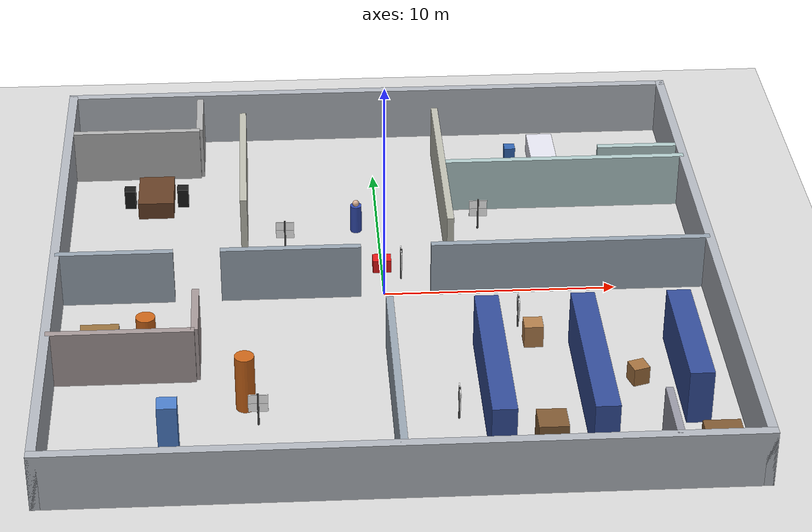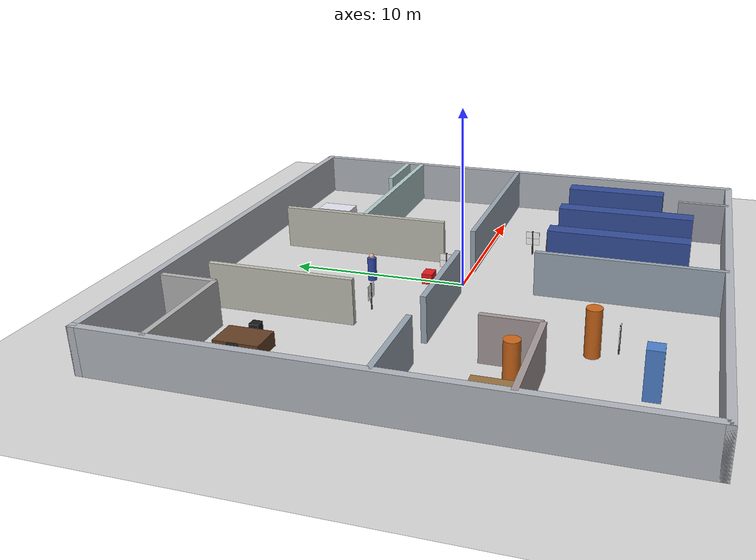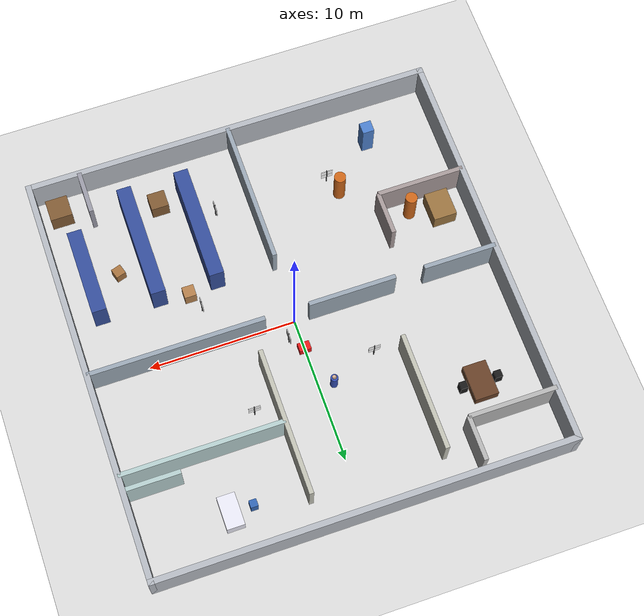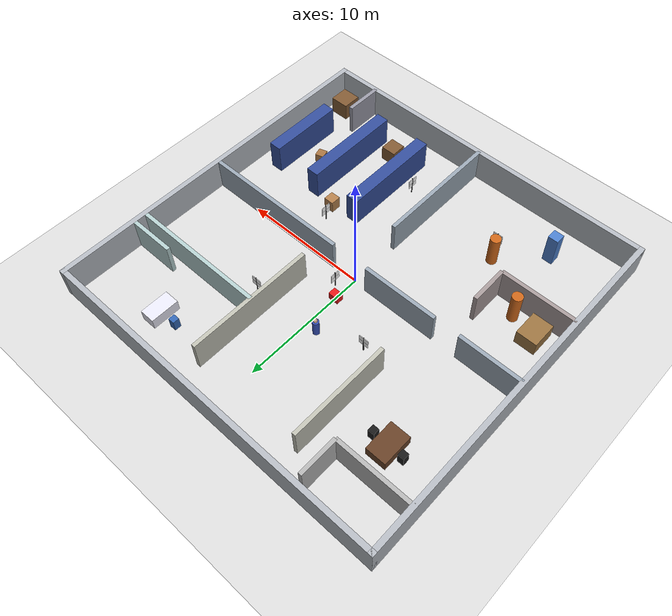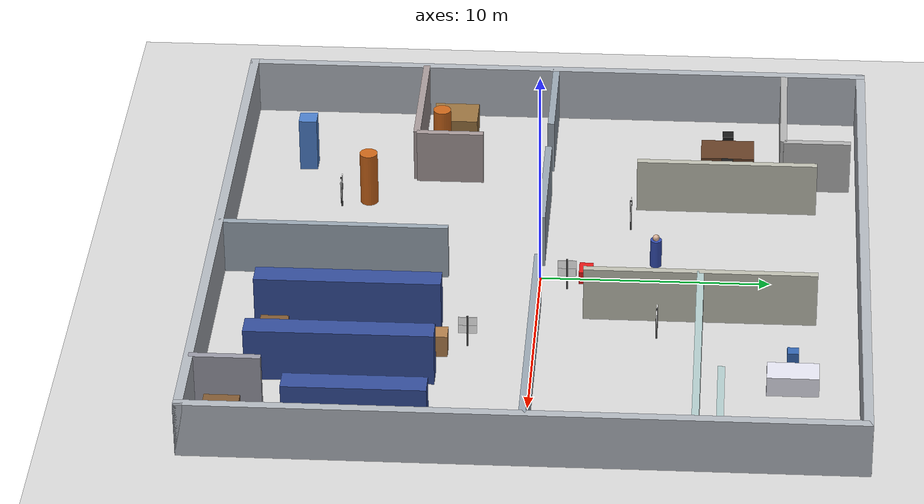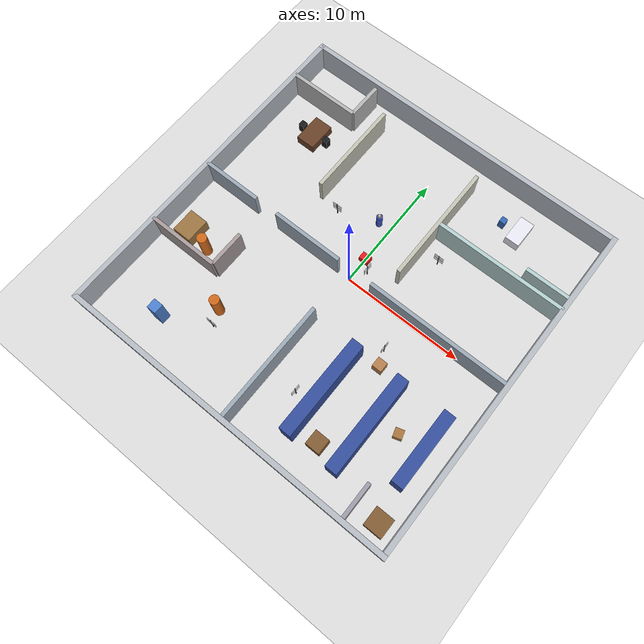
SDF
<?xml version="1.0" ?>
<sdf version="1.8">
  <world name="complex_world">
    <physics name="1ms" type="ignored">
      <max_step_size>0.002</max_step_size>
      <real_time_factor>1.0</real_time_factor>
    </physics>

    <!-- Essential Gazebo Sim Systems -->
    <plugin filename="gz-sim-physics-system" name="gz::sim::systems::Physics"/>
    <plugin filename="gz-sim-user-commands-system" name="gz::sim::systems::UserCommands"/>
    <plugin filename="gz-sim-scene-broadcaster-system" name="gz::sim::systems::SceneBroadcaster"/>
    <plugin filename="gz-sim-sensors-system" name="gz::sim::systems::Sensors">
      <render_engine>ogre2</render_engine>
    </plugin>
    <plugin filename="gz-sim-imu-system" name="gz::sim::systems::Imu"/>

    <!-- Lighting -->
    <light type="directional" name="sun">
      <cast_shadows>true</cast_shadows>
      <pose>0 0 15 0 0 0</pose>
      <diffuse>0.9 0.9 0.9 1</diffuse>
      <specular>0.3 0.3 0.3 1</specular>
      <direction>-0.5 0.3 -0.9</direction>
    </light>

    <!-- Ground Plane (40m x 40m) -->
    <model name="ground_plane">
      <static>true</static>
      <link name="link">
        <collision name="collision">
          <geometry>
            <plane><normal>0 0 1</normal><size>40 40</size></plane>
          </geometry>
        </collision>
        <visual name="visual">
          <geometry>
            <plane><normal>0 0 1</normal><size>40 40</size></plane>
          </geometry>
          <material>
            <ambient>0.85 0.85 0.85 1</ambient>
            <diffuse>0.85 0.85 0.85 1</diffuse>
            <specular>0.2 0.2 0.2 1</specular>
          </material>
        </visual>
      </link>
    </model>

    <!-- ==================== OUTER BOUNDARY WALLS (28m x 28m) ==================== -->
    <model name="boundary_walls">
      <static>true</static>
      <!-- North Wall -->
      <link name="north_wall">
        <pose>0 14 1.25 0 0 0</pose>
        <collision name="col"><geometry><box><size>28.4 0.4 2.5</size></box></geometry></collision>
        <visual name="vis"><geometry><box><size>28.4 0.4 2.5</size></box></geometry><material><diffuse>0.7 0.72 0.75 1</diffuse></material></visual>
      </link>
      <!-- South Wall -->
      <link name="south_wall">
        <pose>0 -14 1.25 0 0 0</pose>
        <collision name="col"><geometry><box><size>28.4 0.4 2.5</size></box></geometry></collision>
        <visual name="vis"><geometry><box><size>28.4 0.4 2.5</size></box></geometry><material><diffuse>0.7 0.72 0.75 1</diffuse></material></visual>
      </link>
      <!-- East Wall -->
      <link name="east_wall">
        <pose>14 0 1.25 0 0 0</pose>
        <collision name="col"><geometry><box><size>0.4 28.4 2.5</size></box></geometry></collision>
        <visual name="vis"><geometry><box><size>0.4 28.4 2.5</size></box></geometry><material><diffuse>0.7 0.72 0.75 1</diffuse></material></visual>
      </link>
      <!-- West Wall -->
      <link name="west_wall">
        <pose>-14 0 1.25 0 0 0</pose>
        <collision name="col"><geometry><box><size>0.4 28.4 2.5</size></box></geometry></collision>
        <visual name="vis"><geometry><box><size>0.4 28.4 2.5</size></box></geometry><material><diffuse>0.7 0.72 0.75 1</diffuse></material></visual>
      </link>
    </model>

    <!-- ==================== INTERIOR DIVIDERS & CORRIDORS ==================== -->
    <model name="interior_dividers">
      <static>true</static>
      <!-- Divider between South and North: West Segment with Bypass Opening at x=-8 -->
      <link name="div_sn_west_a">
        <pose>-11.5 0 1.25 0 0 0</pose>
        <collision name="col"><geometry><box><size>5.0 0.3 2.5</size></box></geometry></collision>
        <visual name="vis"><geometry><box><size>5.0 0.3 2.5</size></box></geometry><material><diffuse>0.6 0.65 0.7 1</diffuse></material></visual>
      </link>
      <!-- West Bypass Opening is between x=-9.0 and x=-7.0 -->
      <link name="div_sn_west_b">
        <pose>-4.0 0 1.25 0 0 0</pose>
        <collision name="col"><geometry><box><size>6.0 0.3 2.5</size></box></geometry></collision>
        <visual name="vis"><geometry><box><size>6.0 0.3 2.5</size></box></geometry><material><diffuse>0.6 0.65 0.7 1</diffuse></material></visual>
      </link>

      <!-- Central Archway is between x=-1.0 and x=+2.0 -->
      <link name="div_sn_east">
        <pose>8.0 0 1.25 0 0 0</pose>
        <collision name="col"><geometry><box><size>12.0 0.3 2.5</size></box></geometry></collision>
        <visual name="vis"><geometry><box><size>12.0 0.3 2.5</size></box></geometry><material><diffuse>0.6 0.65 0.7 1</diffuse></material></visual>
      </link>

      <!-- Divider between Zone A (Open) and Zone B (Warehouse) with corridor gap at y=-10 -->
      <link name="divider_ab_south">
        <pose>0 -9 1.25 0 0 0</pose>
        <collision name="col"><geometry><box><size>0.3 10 2.5</size></box></geometry></collision>
        <visual name="vis"><geometry><box><size>0.3 10 2.5</size></box></geometry><material><diffuse>0.6 0.65 0.7 1</diffuse></material></visual>
      </link>
    </model>

    <!-- ==================== DEAD END 1: ZONE A STORAGE ALCOVE ==================== -->
    <model name="dead_end_1_storage_alcove">
      <static>true</static>
      <!-- Wall enclosing storage alcove -->
      <link name="alcove_wall_north">
        <pose>-11.0 -6.0 1.25 0 0 0</pose>
        <collision name="col"><geometry><box><size>6.0 0.3 2.5</size></box></geometry></collision>
        <visual name="vis"><geometry><box><size>6.0 0.3 2.5</size></box></geometry><material><diffuse>0.65 0.6 0.6 1</diffuse></material></visual>
      </link>
      <link name="alcove_wall_east">
        <pose>-8.0 -4.5 1.25 0 0 0</pose>
        <collision name="col"><geometry><box><size>0.3 3.0 2.5</size></box></geometry></collision>
        <visual name="vis"><geometry><box><size>0.3 3.0 2.5</size></box></geometry><material><diffuse>0.65 0.6 0.6 1</diffuse></material></visual>
      </link>
      <!-- Dead end obstruction (piles of crates/boxes) at (-12, -4.5) -->
      <link name="alcove_boxes">
        <pose>-12.0 -4.5 0.6 0 0 0</pose>
        <collision name="col"><geometry><box><size>1.6 2.0 1.2</size></box></geometry></collision>
        <visual name="vis"><geometry><box><size>1.6 2.0 1.2</size></box></geometry><material><diffuse>0.6 0.45 0.25 1</diffuse></material></visual>
      </link>
    </model>

    <!-- ==================== DEAD END 2: WAREHOUSE CUL-DE-SAC ==================== -->
    <model name="dead_end_2_warehouse_culdesac">
      <static>true</static>
      <!-- Partition wall at x=11.0 separating outer aisle from dead end -->
      <link name="culdesac_wall">
        <pose>10.5 -12.5 1.25 0 0 0</pose>
        <collision name="col"><geometry><box><size>0.3 3.0 2.5</size></box></geometry></collision>
        <visual name="vis"><geometry><box><size>0.3 3.0 2.5</size></box></geometry><material><diffuse>0.6 0.6 0.65 1</diffuse></material></visual>
      </link>
      <!-- Obstruction pallets blocking the end at (12.5, -12.5) -->
      <link name="culdesac_pallets">
        <pose>12.5 -12.5 0.7 0 0 0</pose>
        <collision name="col"><geometry><box><size>1.5 1.5 1.4</size></box></geometry></collision>
        <visual name="vis"><geometry><box><size>1.5 1.5 1.4</size></box></geometry><material><diffuse>0.5 0.35 0.2 1</diffuse></material></visual>
      </link>
    </model>

    <!-- ==================== DEAD END 3: OFFICE UTILITY CLOSET ==================== -->
    <model name="dead_end_3_utility_closet">
      <static>true</static>
      <!-- Corridor walls forming narrow utility dead end at (-12, 12) -->
      <link name="closet_wall_south">
        <pose>-11.0 10.5 1.25 0 0 0</pose>
        <collision name="col"><geometry><box><size>6.0 0.3 2.5</size></box></geometry></collision>
        <visual name="vis"><geometry><box><size>6.0 0.3 2.5</size></box></geometry><material><diffuse>0.7 0.7 0.7 1</diffuse></material></visual>
      </link>
      <link name="closet_wall_east">
        <pose>-8.0 12.0 1.25 0 0 0</pose>
        <collision name="col"><geometry><box><size>0.3 3.0 2.5</size></box></geometry></collision>
        <visual name="vis"><geometry><box><size>0.3 3.0 2.5</size></box></geometry><material><diffuse>0.7 0.7 0.7 1</diffuse></material></visual>
      </link>
    </model>

    <!-- ==================== DEAD END 4: HOSPITAL EAST ALCOVE ==================== -->
    <model name="dead_end_4_hospital_alcove">
      <static>true</static>
      <!-- Wall blocking the far east hospital corridor at (12, 8) -->
      <link name="hospital_alcove_block">
        <pose>12.0 8.0 1.25 0 0 0</pose>
        <collision name="col"><geometry><box><size>3.6 0.3 2.5</size></box></geometry></collision>
        <visual name="vis"><geometry><box><size>3.6 0.3 2.5</size></box></geometry><material><diffuse>0.7 0.8 0.8 1</diffuse></material></visual>
      </link>
    </model>

    <!-- ==================== ZONE A: OPEN PLAZA & PILLARS ==================== -->
    <model name="zone_a_pillars">
      <static>true</static>
      <link name="p1">
        <pose>-10 -5 1.25 0 0 0</pose>
        <collision name="col"><geometry><cylinder><radius>0.4</radius><length>2.5</length></cylinder></geometry></collision>
        <visual name="vis"><geometry><cylinder><radius>0.4</radius><length>2.5</length></cylinder></geometry><material><diffuse>0.8 0.4 0.1 1</diffuse></material></visual>
      </link>
      <link name="p2">
        <pose>-6 -8 1.25 0 0 0</pose>
        <collision name="col"><geometry><cylinder><radius>0.4</radius><length>2.5</length></cylinder></geometry></collision>
        <visual name="vis"><geometry><cylinder><radius>0.4</radius><length>2.5</length></cylinder></geometry><material><diffuse>0.8 0.4 0.1 1</diffuse></material></visual>
      </link>
      <link name="p3">
        <pose>-9 -11 1.25 0 0 0</pose>
        <collision name="col"><geometry><box><size>0.8 0.8 2.5</size></box></geometry></collision>
        <visual name="vis"><geometry><box><size>0.8 0.8 2.5</size></box></geometry><material><diffuse>0.3 0.5 0.8 1</diffuse></material></visual>
      </link>
    </model>

    <!-- ==================== ZONE B: WAREHOUSE AISLES & SHELVES ==================== -->
    <model name="warehouse_shelves">
      <static>true</static>
      <!-- Rack Row 1 (Main Aisle Border) -->
      <link name="shelf1">
        <pose>4 -8 1.2 0 0 0</pose>
        <collision name="col"><geometry><box><size>1.0 8.0 2.4</size></box></geometry></collision>
        <visual name="vis"><geometry><box><size>1.0 8.0 2.4</size></box></geometry><material><diffuse>0.2 0.3 0.6 1</diffuse></material></visual>
      </link>
      <!-- Rack Row 2 -->
      <link name="shelf2">
        <pose>8 -8 1.2 0 0 0</pose>
        <collision name="col"><geometry><box><size>1.0 8.0 2.4</size></box></geometry></collision>
        <visual name="vis"><geometry><box><size>1.0 8.0 2.4</size></box></geometry><material><diffuse>0.2 0.3 0.6 1</diffuse></material></visual>
      </link>
      <!-- Rack Row 3 -->
      <link name="shelf3">
        <pose>12 -7 1.2 0 0 0</pose>
        <collision name="col"><geometry><box><size>1.0 6.0 2.4</size></box></geometry></collision>
        <visual name="vis"><geometry><box><size>1.0 6.0 2.4</size></box></geometry><material><diffuse>0.2 0.3 0.6 1</diffuse></material></visual>
      </link>
    </model>

    <!-- Warehouse Boxes and Pallets -->
    <model name="warehouse_boxes">
      <static>true</static>
      <link name="box1">
        <pose>6 -4 0.5 0 0 0</pose>
        <collision name="col"><geometry><box><size>0.8 0.8 1.0</size></box></geometry></collision>
        <visual name="vis"><geometry><box><size>0.8 0.8 1.0</size></box></geometry><material><diffuse>0.7 0.5 0.3 1</diffuse></material></visual>
      </link>
      <link name="box2">
        <pose>10 -7 0.4 0 0 0.3</pose>
        <collision name="col"><geometry><box><size>0.7 0.7 0.8</size></box></geometry></collision>
        <visual name="vis"><geometry><box><size>0.7 0.7 0.8</size></box></geometry><material><diffuse>0.65 0.45 0.25 1</diffuse></material></visual>
      </link>
      <link name="pallet_stack">
        <pose>6 -11 0.6 0 0 0</pose>
        <collision name="col"><geometry><box><size>1.2 1.2 1.2</size></box></geometry></collision>
        <visual name="vis"><geometry><box><size>1.2 1.2 1.2</size></box></geometry><material><diffuse>0.5 0.35 0.2 1</diffuse></material></visual>
      </link>
    </model>

    <!-- ==================== ZONE C: OFFICE & HOSPITAL ROOMS ==================== -->
    <model name="zone_c_rooms">
      <static>true</static>
      <!-- Room 1 Wall (West Office) -->
      <link name="r1_east">
        <pose>-6 8 1.25 0 0 0</pose>
        <collision name="col"><geometry><box><size>0.3 8 2.5</size></box></geometry></collision>
        <visual name="vis"><geometry><box><size>0.3 8 2.5</size></box></geometry><material><diffuse>0.75 0.75 0.7 1</diffuse></material></visual>
      </link>
      <!-- Central Corridor Wall -->
      <link name="corridor_wall_east">
        <pose>3 7 1.25 0 0 0</pose>
        <collision name="col"><geometry><box><size>0.3 10 2.5</size></box></geometry></collision>
        <visual name="vis"><geometry><box><size>0.3 10 2.5</size></box></geometry><material><diffuse>0.75 0.75 0.7 1</diffuse></material></visual>
      </link>
      <!-- Hospital Room Divider -->
      <link name="hospital_room_wall">
        <pose>8.5 7 1.25 0 0 0</pose>
        <collision name="col"><geometry><box><size>11 0.3 2.5</size></box></geometry></collision>
        <visual name="vis"><geometry><box><size>11 0.3 2.5</size></box></geometry><material><diffuse>0.7 0.8 0.8 1</diffuse></material></visual>
      </link>
    </model>

    <!-- Office & Hospital Furniture (Semantic Objects for CV) -->
    <model name="office_furniture">
      <static>true</static>
      <!-- Meeting Table -->
      <link name="table1">
        <pose>-10 8 0.4 0 0 0</pose>
        <collision name="col"><geometry><box><size>1.6 2.4 0.8</size></box></geometry></collision>
        <visual name="vis"><geometry><box><size>1.6 2.4 0.8</size></box></geometry><material><diffuse>0.4 0.25 0.15 1</diffuse></material></visual>
      </link>
      <!-- Office Chairs -->
      <link name="chair1">
        <pose>-11.2 8 0.45 0 0 0</pose>
        <collision name="col"><geometry><box><size>0.5 0.5 0.9</size></box></geometry></collision>
        <visual name="vis"><geometry><box><size>0.5 0.5 0.9</size></box></geometry><material><diffuse>0.1 0.1 0.1 1</diffuse></material></visual>
      </link>
      <link name="chair2">
        <pose>-8.8 8 0.45 0 0 0</pose>
        <collision name="col"><geometry><box><size>0.5 0.5 0.9</size></box></geometry></collision>
        <visual name="vis"><geometry><box><size>0.5 0.5 0.9</size></box></geometry><material><diffuse>0.1 0.1 0.1 1</diffuse></material></visual>
      </link>
      <!-- Hospital Bed / Stretcher -->
      <link name="hospital_bed">
        <pose>8 11 0.45 0 0 0</pose>
        <collision name="col"><geometry><box><size>1.2 2.2 0.9</size></box></geometry></collision>
        <visual name="vis"><geometry><box><size>1.2 2.2 0.9</size></box></geometry><material><diffuse>0.9 0.9 0.95 1</diffuse></material></visual>
      </link>
      <link name="hospital_chair">
        <pose>6.5 11 0.45 0 0 0</pose>
        <collision name="col"><geometry><box><size>0.5 0.5 0.9</size></box></geometry></collision>
        <visual name="vis"><geometry><box><size>0.5 0.5 0.9</size></box></geometry><material><diffuse>0.2 0.4 0.7 1</diffuse></material></visual>
      </link>
      <!-- Person Model -->
      <link name="person_standing">
        <pose>-1 5 0.85 0 0 0</pose>
        <collision name="col"><geometry><cylinder><radius>0.25</radius><length>1.7</length></cylinder></geometry></collision>
        <visual name="vis_torso"><geometry><cylinder><radius>0.25</radius><length>1.3</length></cylinder></geometry><material><diffuse>0.2 0.3 0.7 1</diffuse></material></visual>
        <visual name="vis_head"><pose>0 0 0.75 0 0 0</pose><geometry><sphere><radius>0.15</radius></sphere></geometry><material><diffuse>0.85 0.7 0.6 1</diffuse></material></visual>
      </link>
    </model>

    <!-- ==================== DYNAMIC OBSTACLES ==================== -->
    <model name="dynamic_obstacle_cart">
      <pose>0 2 0.3 0 0 0</pose>
      <link name="cart_link">
        <inertial>
          <mass>10.0</mass>
          <inertia>
            <ixx>0.5</ixx><ixy>0</ixy><ixz>0</ixz>
            <iyy>0.5</iyy><iyz>0</iyz><izz>0.5</izz>
          </inertia>
        </inertial>
        <collision name="col"><geometry><box><size>0.8 0.6 0.6</size></box></geometry></collision>
        <visual name="vis"><geometry><box><size>0.8 0.6 0.6</size></box></geometry><material><diffuse>0.9 0.1 0.1 1</diffuse></material></visual>
      </link>
    </model>

    <!-- ==================== VISUAL SIGNPOSTS AT JUNCTIONS ==================== -->
    <!-- Signpost 1: Plaza Junction (at -5.5, -9.2 facing West/South) -->
    <model name="signpost_1_plaza">
      <static>true</static>
      <pose>-5.5 -9.2 0 0 0 0</pose>
      <!-- Post -->
      <link name="post">
        <collision name="col"><pose>0 0 0.75 0 0 0</pose><geometry><cylinder><radius>0.04</radius><length>1.5</length></cylinder></geometry></collision>
        <visual name="vis_post"><pose>0 0 0.75 0 0 0</pose><geometry><cylinder><radius>0.04</radius><length>1.5</length></cylinder></geometry><material><diffuse>0.3 0.3 0.3 1</diffuse></material></visual>
        <!-- Sign Board: WAREHOUSE -> -->
        <visual name="vis_sign_warehouse">
          <pose>0 0 1.25 0 0 0</pose>
          <geometry><box><size>0.8 0.04 0.4</size></box></geometry>
          <material>
            <ambient>1 1 1 1</ambient><diffuse>1 1 1 1</diffuse>
            <pbr><metal><albedo_map>/home/soham-darade/CV_Autonomous_Navigation/ros2_ws/src/autonomous_robot_gazebo/materials/textures/signs/warehouse_right.png</albedo_map></metal></pbr>
          </material>
        </visual>
        <!-- Sign Board: OFFICE ^ -->
        <visual name="vis_sign_office">
          <pose>0 0 0.85 0 0 0</pose>
          <geometry><box><size>0.8 0.04 0.4</size></box></geometry>
          <material>
            <ambient>1 1 1 1</ambient><diffuse>1 1 1 1</diffuse>
            <pbr><metal><albedo_map>/home/soham-darade/CV_Autonomous_Navigation/ros2_ws/src/autonomous_robot_gazebo/materials/textures/signs/office_straight.png</albedo_map></metal></pbr>
          </material>
        </visual>
      </link>
    </model>

    <!-- Signpost 2: Warehouse Entrance (at 2.5, -9.2 facing South) -->
    <model name="signpost_2_warehouse_entrance">
      <static>true</static>
      <pose>2.5 -9.2 0 0 0 1.57</pose>
      <link name="post">
        <collision name="col"><pose>0 0 0.75 0 0 0</pose><geometry><cylinder><radius>0.04</radius><length>1.5</length></cylinder></geometry></collision>
        <visual name="vis_post"><pose>0 0 0.75 0 0 0</pose><geometry><cylinder><radius>0.04</radius><length>1.5</length></cylinder></geometry><material><diffuse>0.3 0.3 0.3 1</diffuse></material></visual>
        <!-- Sign Board: WAREHOUSE ^ -->
        <visual name="vis_sign_warehouse">
          <pose>0 0 1.25 0 0 0</pose>
          <geometry><box><size>0.8 0.04 0.4</size></box></geometry>
          <material>
            <ambient>1 1 1 1</ambient><diffuse>1 1 1 1</diffuse>
            <pbr><metal><albedo_map>/home/soham-darade/CV_Autonomous_Navigation/ros2_ws/src/autonomous_robot_gazebo/materials/textures/signs/warehouse_straight.png</albedo_map></metal></pbr>
          </material>
        </visual>
        <!-- Sign Board: HOSPITAL ^ -->
        <visual name="vis_sign_hospital">
          <pose>0 0 0.85 0 0 0</pose>
          <geometry><box><size>0.8 0.04 0.4</size></box></geometry>
          <material>
            <ambient>1 1 1 1</ambient><diffuse>1 1 1 1</diffuse>
            <pbr><metal><albedo_map>/home/soham-darade/CV_Autonomous_Navigation/ros2_ws/src/autonomous_robot_gazebo/materials/textures/signs/hospital_straight.png</albedo_map></metal></pbr>
          </material>
        </visual>
      </link>
    </model>

    <!-- Signpost 3: Warehouse Mid Junction (at 5.5, -2.8 facing South) -->
    <model name="signpost_3_warehouse_mid">
      <static>true</static>
      <pose>5.5 -2.8 0 0 0 1.57</pose>
      <link name="post">
        <collision name="col"><pose>0 0 0.75 0 0 0</pose><geometry><cylinder><radius>0.04</radius><length>1.5</length></cylinder></geometry></collision>
        <visual name="vis_post"><pose>0 0 0.75 0 0 0</pose><geometry><cylinder><radius>0.04</radius><length>1.5</length></cylinder></geometry><material><diffuse>0.3 0.3 0.3 1</diffuse></material></visual>
        <!-- Sign Board: HOSPITAL ^ -->
        <visual name="vis_sign_hospital">
          <pose>0 0 1.25 0 0 0</pose>
          <geometry><box><size>0.8 0.04 0.4</size></box></geometry>
          <material>
            <ambient>1 1 1 1</ambient><diffuse>1 1 1 1</diffuse>
            <pbr><metal><albedo_map>/home/soham-darade/CV_Autonomous_Navigation/ros2_ws/src/autonomous_robot_gazebo/materials/textures/signs/hospital_straight.png</albedo_map></metal></pbr>
          </material>
        </visual>
        <!-- Sign Board: LAB <- -->
        <visual name="vis_sign_lab">
          <pose>0 0 0.85 0 0 0</pose>
          <geometry><box><size>0.8 0.04 0.4</size></box></geometry>
          <material>
            <ambient>1 1 1 1</ambient><diffuse>1 1 1 1</diffuse>
            <pbr><metal><albedo_map>/home/soham-darade/CV_Autonomous_Navigation/ros2_ws/src/autonomous_robot_gazebo/materials/textures/signs/lab_left.png</albedo_map></metal></pbr>
          </material>
        </visual>
      </link>
    </model>

    <!-- Signpost 4: Central Archway Junction (at 0.8, 1.2 facing South) -->
    <model name="signpost_4_central_archway">
      <static>true</static>
      <pose>0.8 1.2 0 0 0 1.57</pose>
      <link name="post">
        <collision name="col"><pose>0 0 0.75 0 0 0</pose><geometry><cylinder><radius>0.04</radius><length>1.5</length></cylinder></geometry></collision>
        <visual name="vis_post"><pose>0 0 0.75 0 0 0</pose><geometry><cylinder><radius>0.04</radius><length>1.5</length></cylinder></geometry><material><diffuse>0.3 0.3 0.3 1</diffuse></material></visual>
        <!-- Sign Board: HOSPITAL -> -->
        <visual name="vis_sign_hospital">
          <pose>0 0 1.25 0 0 0</pose>
          <geometry><box><size>0.8 0.04 0.4</size></box></geometry>
          <material>
            <ambient>1 1 1 1</ambient><diffuse>1 1 1 1</diffuse>
            <pbr><metal><albedo_map>/home/soham-darade/CV_Autonomous_Navigation/ros2_ws/src/autonomous_robot_gazebo/materials/textures/signs/hospital_right.png</albedo_map></metal></pbr>
          </material>
        </visual>
        <!-- Sign Board: OFFICE <- -->
        <visual name="vis_sign_office">
          <pose>0 0 0.85 0 0 0</pose>
          <geometry><box><size>0.8 0.04 0.4</size></box></geometry>
          <material>
            <ambient>1 1 1 1</ambient><diffuse>1 1 1 1</diffuse>
            <pbr><metal><albedo_map>/home/soham-darade/CV_Autonomous_Navigation/ros2_ws/src/autonomous_robot_gazebo/materials/textures/signs/office_left.png</albedo_map></metal></pbr>
          </material>
        </visual>
      </link>
    </model>

    <!-- Signpost 5: Office Junction (at -4.2, 3.8 facing East) -->
    <model name="signpost_5_office">
      <static>true</static>
      <pose>-4.2 3.8 0 0 0 3.14</pose>
      <link name="post">
        <collision name="col"><pose>0 0 0.75 0 0 0</pose><geometry><cylinder><radius>0.04</radius><length>1.5</length></cylinder></geometry></collision>
        <visual name="vis_post"><pose>0 0 0.75 0 0 0</pose><geometry><cylinder><radius>0.04</radius><length>1.5</length></cylinder></geometry><material><diffuse>0.3 0.3 0.3 1</diffuse></material></visual>
        <!-- Sign Board: OFFICE ^ -->
        <visual name="vis_sign_office">
          <pose>0 0 1.25 0 0 0</pose>
          <geometry><box><size>0.8 0.04 0.4</size></box></geometry>
          <material>
            <ambient>1 1 1 1</ambient><diffuse>1 1 1 1</diffuse>
            <pbr><metal><albedo_map>/home/soham-darade/CV_Autonomous_Navigation/ros2_ws/src/autonomous_robot_gazebo/materials/textures/signs/office_straight.png</albedo_map></metal></pbr>
          </material>
        </visual>
        <!-- Sign Board: LAB <- -->
        <visual name="vis_sign_lab">
          <pose>0 0 0.85 0 0 0</pose>
          <geometry><box><size>0.8 0.04 0.4</size></box></geometry>
          <material>
            <ambient>1 1 1 1</ambient><diffuse>1 1 1 1</diffuse>
            <pbr><metal><albedo_map>/home/soham-darade/CV_Autonomous_Navigation/ros2_ws/src/autonomous_robot_gazebo/materials/textures/signs/lab_left.png</albedo_map></metal></pbr>
          </material>
        </visual>
      </link>
    </model>

    <!-- Signpost 6: Hospital Junction (at 4.5, 5.2 facing West) -->
    <model name="signpost_6_hospital">
      <static>true</static>
      <pose>4.5 5.2 0 0 0 0</pose>
      <link name="post">
        <collision name="col"><pose>0 0 0.75 0 0 0</pose><geometry><cylinder><radius>0.04</radius><length>1.5</length></cylinder></geometry></collision>
        <visual name="vis_post"><pose>0 0 0.75 0 0 0</pose><geometry><cylinder><radius>0.04</radius><length>1.5</length></cylinder></geometry><material><diffuse>0.3 0.3 0.3 1</diffuse></material></visual>
        <!-- Sign Board: HOSPITAL -> -->
        <visual name="vis_sign_hospital">
          <pose>0 0 1.25 0 0 0</pose>
          <geometry><box><size>0.8 0.04 0.4</size></box></geometry>
          <material>
            <ambient>1 1 1 1</ambient><diffuse>1 1 1 1</diffuse>
            <pbr><metal><albedo_map>/home/soham-darade/CV_Autonomous_Navigation/ros2_ws/src/autonomous_robot_gazebo/materials/textures/signs/hospital_right.png</albedo_map></metal></pbr>
          </material>
        </visual>
        <!-- Sign Board: CAFETERIA <- -->
        <visual name="vis_sign_cafeteria">
          <pose>0 0 0.85 0 0 0</pose>
          <geometry><box><size>0.8 0.04 0.4</size></box></geometry>
          <material>
            <ambient>1 1 1 1</ambient><diffuse>1 1 1 1</diffuse>
            <pbr><metal><albedo_map>/home/soham-darade/CV_Autonomous_Navigation/ros2_ws/src/autonomous_robot_gazebo/materials/textures/signs/cafeteria_left.png</albedo_map></metal></pbr>
          </material>
        </visual>
      </link>
    </model>

  </world>
</sdf>
